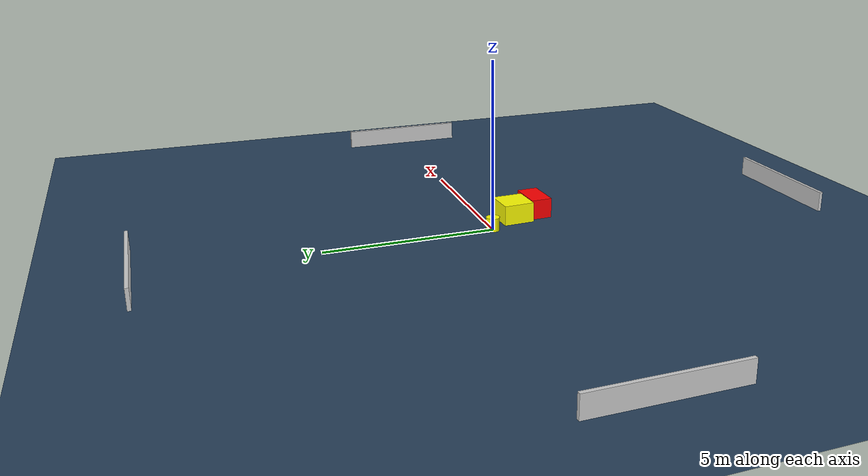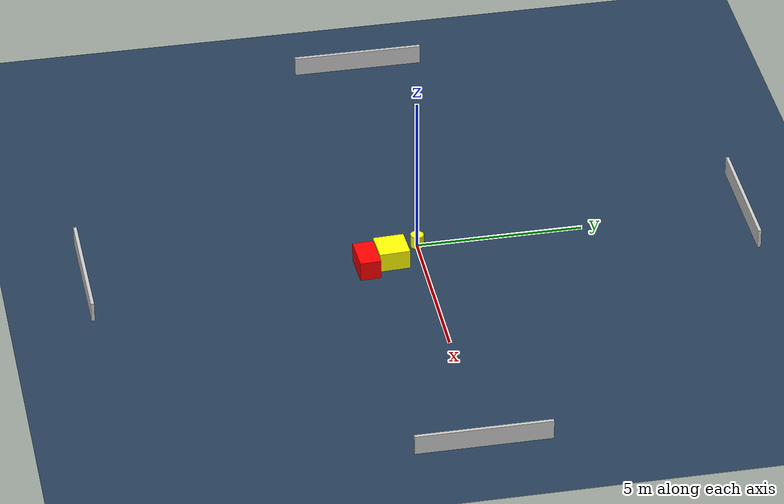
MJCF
<?xml version="1.0" ?>
<mujoco model="generated_environment">
  <option timestep="0.01" integrator="RK4" cone="elliptic"/>
  <default>
    <geom density="1"/>
  </default>
  <asset>
    <texture builtin="gradient" height="3072" name="skybox" rgb1="0.3 0.5 0.7" rgb2="0 0 0" type="skybox" width="512"/>
    <texture builtin="checker" height="300" name="groundplane" rgb1="0.2 0.3 0.4" rgb2="0.1 0.2 0.3" type="2d" width="300"/>
    <material name="groundplane" reflectance="0.2" texrepeat="5 5" texture="groundplane"/>
  </asset>
  <worldbody>
    <light dir="0 0 -1" directional="true" pos="0 0 1.5"/>
    <geom condim="3" friction="0.5 0.005 0.001" material="groundplane" name="floor" pos="0 0 0" size="0 0 0.05" type="plane"/>
    <body name="walls">
      <geom name="wall_1" condim="4" pos="-10.0 0.0 0.3" rgba="0.800000011920929 0.800000011920929 0.800000011920929 1.0" size="0.05 2.0 0.3" type="box"/>
      <geom name="wall_2" condim="4" pos="10.0 0.0 0.3" rgba="0.800000011920929 0.800000011920929 0.800000011920929 1.0" size="0.05 2.0 0.3" type="box"/>
      <geom name="wall_3" condim="4" pos="0.0 -10.0 0.3" rgba="0.800000011920929 0.800000011920929 0.800000011920929 1.0" size="2.0 0.05 0.3" type="box"/>
      <geom name="wall_4" condim="4" pos="0.0 10.0 0.3" rgba="0.800000011920929 0.800000011920929 0.800000011920929 1.0" size="2.0 0.05 0.3" type="box"/>
    </body>
    <body name="robot">
      <joint name="joint_x" type="slide" pos="0 0 0" axis="1 0 0"/>
      <joint name="joint_y" type="slide" pos="0 0 0" axis="0 1 0"/>
      <geom name="robot" type="cylinder" pos="0.0 0.0 0.2" size="0.2 0.2 0.0" mass="5.0" friction="1.0 0.005 0.0001" condim="4" rgba="1.0 1.0 0.0 1.0"/>
    </body>
    <body name="obstacle_1_movable">
      <geom name="obstacle_1_movable" condim="4" pos="0.6564594780546681 -0.8952169350986614 0.3" euler="0 0 272.6577662931732" friction="0.0 0.005 0.001" rgba="1.0 1.0 0.0 1.0" size="0.4625376442472253 0.4604225630340507 0.3" type="box" mass="0.1"/>
      <joint type="free"/>
    </body>
    <body name="obstacle_2_static">
      <geom name="obstacle_2_static" condim="4" pos="0.9196818688479139 -1.6908833203681266 0.3" euler="0 0 2.2377803624915726" friction="0.0 0.005 0.001" rgba="1.0 0.0 0.0 1.0" size="0.5409831133261658 0.31596524822533256 0.3" type="box"/>
    </body>
  </worldbody>
  <actuator>
    <motor name="actuator_x" joint="joint_x" gear="1" ctrlrange="-1 1"/>
    <motor name="actuator_y" joint="joint_y" gear="1" ctrlrange="-1 1"/>
  </actuator>
</mujoco>
